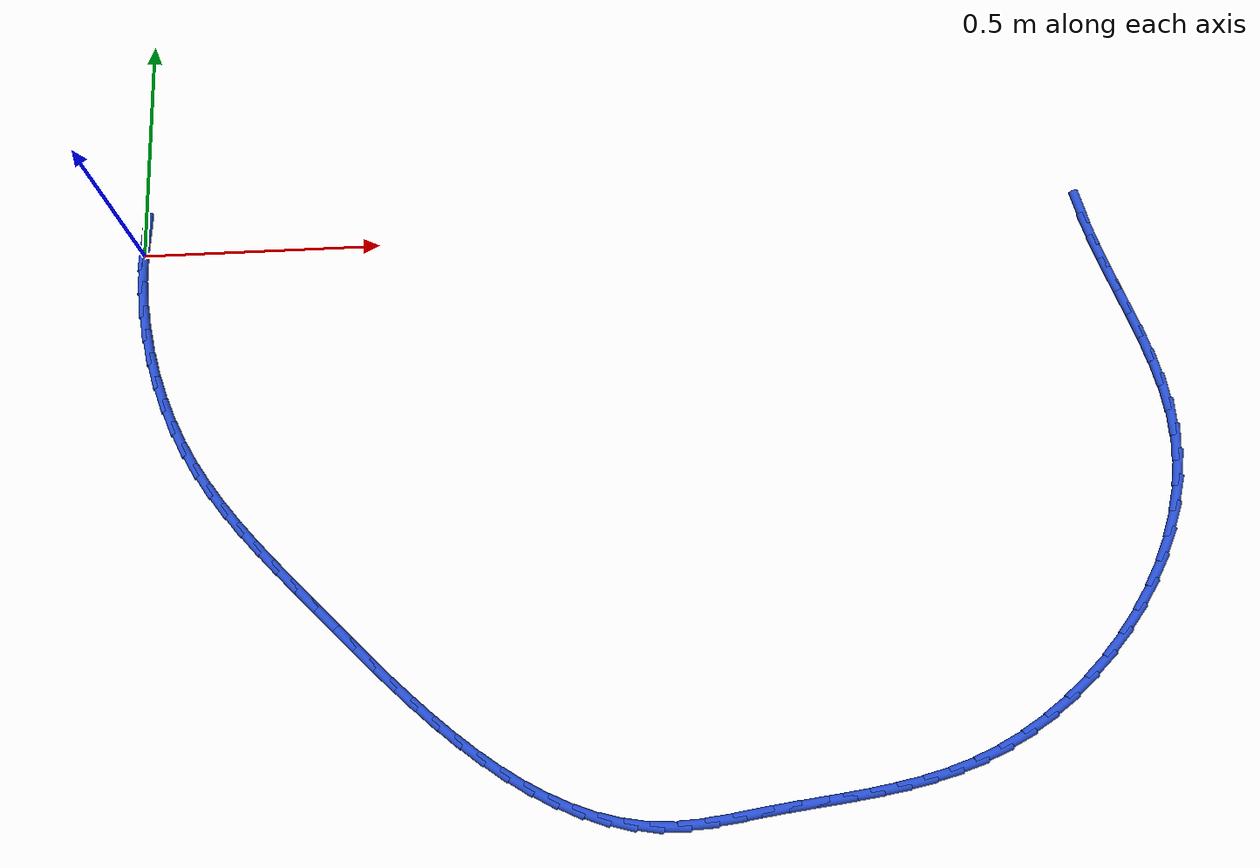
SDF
<sdf version="1.6">
 <world name="default">
  <model name="ground_plane">
   <static>1</static>
   <link name="link">
    <collision name="collision">
     <geometry><plane><normal>0 0 1</normal><size>100 100</size></plane></geometry>
     <surface><friction><ode><mu>100</mu><mu2>50</mu2></ode></friction></surface>
    </collision>
    <visual name="visual">
     <cast_shadows>0</cast_shadows>
     <geometry><plane><normal>0 0 1</normal><size>100 100</size></plane></geometry>
     <material>
      <script><uri>file://media/materials/scripts/gazebo.material</uri><name>Gazebo/WhiteGlow</name></script>
     </material>
    </visual>
   </link>
  </model>
  <model name="line">
   <link name="link_0">
    <pose>2.42861286636753e-17 0.0 0.01 0 1.57 1.5062456968991784</pose>
    <collision name="collision">
     <geometry><cylinder><radius>0.01</radius><length>0.08</length></cylinder></geometry>
    </collision>
    <visual name="visual">
     <material>
      <script><name>Gazebo/Blue</name><uri>file://media/materials/scripts/gazebo.material</uri></script>
     </material>
     <geometry><cylinder><radius>0.01</radius><length>0.08</length></cylinder></geometry>
    </visual>
   </link>
   <link name="link_72">
    <pose>2.0040105107833446 0.015288475493334236 0.01 0 1.57 -1.3416177244611234</pose>
    <collision name="collision">
     <geometry><cylinder><radius>0.01</radius><length>0.08</length></cylinder></geometry>
    </collision>
    <visual name="visual">
     <material>
      <script><name>Gazebo/Blue</name><uri>file://media/materials/scripts/gazebo.material</uri></script>
     </material>
     <geometry><cylinder><radius>0.01</radius><length>0.08</length></cylinder></geometry>
    </visual>
   </link>
   <link name="link_73">
    <pose>2.016112051571794 -0.03658777302632177 0.01 0 1.57 -1.2867563114248148</pose>
    <collision name="collision">
     <geometry><cylinder><radius>0.01</radius><length>0.08</length></cylinder></geometry>
    </collision>
    <visual name="visual">
     <material>
      <script><name>Gazebo/Blue</name><uri>file://media/materials/scripts/gazebo.material</uri></script>
     </material>
     <geometry><cylinder><radius>0.01</radius><length>0.08</length></cylinder></geometry>
    </visual>
   </link>
   <link name="link_74">
    <pose>2.031366813211641 -0.08884200579244145 0.01 0 1.57 -1.252699646388601</pose>
    <collision name="collision">
     <geometry><cylinder><radius>0.01</radius><length>0.08</length></cylinder></geometry>
    </collision>
    <visual name="visual">
     <material>
      <script><name>Gazebo/Blue</name><uri>file://media/materials/scripts/gazebo.material</uri></script>
     </material>
     <geometry><cylinder><radius>0.01</radius><length>0.08</length></cylinder></geometry>
    </visual>
   </link>
   <link name="link_75">
    <pose>2.0486881807415496 -0.1414460267157893 0.01 0 1.57 -1.2378734197632872</pose>
    <collision name="collision">
     <geometry><cylinder><radius>0.01</radius><length>0.08</length></cylinder></geometry>
    </collision>
    <visual name="visual">
     <material>
      <script><name>Gazebo/Blue</name><uri>file://media/materials/scripts/gazebo.material</uri></script>
     </material>
     <geometry><cylinder><radius>0.01</radius><length>0.08</length></cylinder></geometry>
    </visual>
   </link>
   <link name="link_76">
    <pose>2.066989539200182 -0.194371639707129 0.01 0 1.57 -1.2413698996060933</pose>
    <collision name="collision">
     <geometry><cylinder><radius>0.01</radius><length>0.08</length></cylinder></geometry>
    </collision>
    <visual name="visual">
     <material>
      <script><name>Gazebo/Blue</name><uri>file://media/materials/scripts/gazebo.material</uri></script>
     </material>
     <geometry><cylinder><radius>0.01</radius><length>0.08</length></cylinder></geometry>
    </visual>
   </link>
   <link name="link_77">
    <pose>2.085184273626199 -0.24759064867722425 0.01 0 1.57 -1.263018742705472</pose>
    <collision name="collision">
     <geometry><cylinder><radius>0.01</radius><length>0.08</length></cylinder></geometry>
    </collision>
    <visual name="visual">
     <material>
      <script><name>Gazebo/Blue</name><uri>file://media/materials/scripts/gazebo.material</uri></script>
     </material>
     <geometry><cylinder><radius>0.01</radius><length>0.08</length></cylinder></geometry>
    </visual>
   </link>
   <link name="link_78">
    <pose>2.102185769058264 -0.3010748575368397 0.01 0 1.57 -1.3033249106179878</pose>
    <collision name="collision">
     <geometry><cylinder><radius>0.01</radius><length>0.08</length></cylinder></geometry>
    </collision>
    <visual name="visual">
     <material>
      <script><name>Gazebo/Blue</name><uri>file://media/materials/scripts/gazebo.material</uri></script>
     </material>
     <geometry><cylinder><radius>0.01</radius><length>0.08</length></cylinder></geometry>
    </visual>
   </link>
   <link name="link_79">
    <pose>2.116907410535038 -0.3547960701967372 0.01 0 1.57 -1.3632737501175733</pose>
    <collision name="collision">
     <geometry><cylinder><radius>0.01</radius><length>0.08</length></cylinder></geometry>
    </collision>
    <visual name="visual">
     <material>
      <script><name>Gazebo/Blue</name><uri>file://media/materials/scripts/gazebo.material</uri></script>
     </material>
     <geometry><cylinder><radius>0.01</radius><length>0.08</length></cylinder></geometry>
    </visual>
   </link>
   <link name="link_80">
    <pose>2.128262583095183 -0.4087260905676813 0.01 0 1.57 -1.4439263084551768</pose>
    <collision name="collision">
     <geometry><cylinder><radius>0.01</radius><length>0.08</length></cylinder></geometry>
    </collision>
    <visual name="visual">
     <material>
      <script><name>Gazebo/Blue</name><uri>file://media/materials/scripts/gazebo.material</uri></script>
     </material>
     <geometry><cylinder><radius>0.01</radius><length>0.08</length></cylinder></geometry>
    </visual>
   </link>
   <link name="link_81">
    <pose>2.135164671777362 -0.4628367225604355 0.01 0 1.57 -1.5452894200503906</pose>
    <collision name="collision">
     <geometry><cylinder><radius>0.01</radius><length>0.08</length></cylinder></geometry>
    </collision>
    <visual name="visual">
     <material>
      <script><name>Gazebo/Blue</name><uri>file://media/materials/scripts/gazebo.material</uri></script>
     </material>
     <geometry><cylinder><radius>0.01</radius><length>0.08</length></cylinder></geometry>
    </visual>
   </link>
   <link name="link_82">
    <pose>2.1365489396836734 -0.5170952692563825 0.01 0 1.57 1.4870841949405584</pose>
    <collision name="collision">
     <geometry><cylinder><radius>0.01</radius><length>0.08</length></cylinder></geometry>
    </collision>
    <visual name="visual">
     <material>
      <script><name>Gazebo/Blue</name><uri>file://media/materials/scripts/gazebo.material</uri></script>
     </material>
     <geometry><cylinder><radius>0.01</radius><length>0.08</length></cylinder></geometry>
    </visual>
   </link>
   <link name="link_83">
    <pose>2.13199770295842 -0.5713359197913909 0.01 0 1.57 1.384400701026901</pose>
    <collision name="collision">
     <geometry><cylinder><radius>0.01</radius><length>0.08</length></cylinder></geometry>
    </collision>
    <visual name="visual">
     <material>
      <script><name>Gazebo/Blue</name><uri>file://media/materials/scripts/gazebo.material</uri></script>
     </material>
     <geometry><cylinder><radius>0.01</radius><length>0.08</length></cylinder></geometry>
    </visual>
   </link>
   <link name="link_84">
    <pose>2.1218320509750916 -0.6252408803680027 0.01 0 1.57 1.2889178028825368</pose>
    <collision name="collision">
     <geometry><cylinder><radius>0.01</radius><length>0.08</length></cylinder></geometry>
    </collision>
    <visual name="visual">
     <material>
      <script><name>Gazebo/Blue</name><uri>file://media/materials/scripts/gazebo.material</uri></script>
     </material>
     <geometry><cylinder><radius>0.01</radius><length>0.08</length></cylinder></geometry>
    </visual>
   </link>
   <link name="link_85">
    <pose>2.1064133963194 -0.6784840617608336 0.01 0 1.57 1.200092322463749</pose>
    <collision name="collision">
     <geometry><cylinder><radius>0.01</radius><length>0.08</length></cylinder></geometry>
    </collision>
    <visual name="visual">
     <material>
      <script><name>Gazebo/Blue</name><uri>file://media/materials/scripts/gazebo.material</uri></script>
     </material>
     <geometry><cylinder><radius>0.01</radius><length>0.08</length></cylinder></geometry>
    </visual>
   </link>
   <link name="link_86">
    <pose>2.0861031515770594 -0.7307393747445 0.01 0 1.57 1.1170953570794266</pose>
    <collision name="collision">
     <geometry><cylinder><radius>0.01</radius><length>0.08</length></cylinder></geometry>
    </collision>
    <visual name="visual">
     <material>
      <script><name>Gazebo/Blue</name><uri>file://media/materials/scripts/gazebo.material</uri></script>
     </material>
     <geometry><cylinder><radius>0.01</radius><length>0.08</length></cylinder></geometry>
    </visual>
   </link>
   <link name="link_87">
    <pose>2.0612627293337824 -0.7816807300936185 0.01 0 1.57 1.0389454247448633</pose>
    <collision name="collision">
     <geometry><cylinder><radius>0.01</radius><length>0.08</length></cylinder></geometry>
    </collision>
    <visual name="visual">
     <material>
      <script><name>Gazebo/Blue</name><uri>file://media/materials/scripts/gazebo.material</uri></script>
     </material>
     <geometry><cylinder><radius>0.01</radius><length>0.08</length></cylinder></geometry>
    </visual>
   </link>
   <link name="link_88">
    <pose>2.032253542175284 -0.8309820385828038 0.01 0 1.57 0.9645945229496923</pose>
    <collision name="collision">
     <geometry><cylinder><radius>0.01</radius><length>0.08</length></cylinder></geometry>
    </collision>
    <visual name="visual">
     <material>
      <script><name>Gazebo/Blue</name><uri>file://media/materials/scripts/gazebo.material</uri></script>
     </material>
     <geometry><cylinder><radius>0.01</radius><length>0.08</length></cylinder></geometry>
    </visual>
   </link>
   <link name="link_89">
    <pose>1.999437002687277 -0.8783172109866724 0.01 0 1.57 0.8929748739932691</pose>
    <collision name="collision">
     <geometry><cylinder><radius>0.01</radius><length>0.08</length></cylinder></geometry>
    </collision>
    <visual name="visual">
     <material>
      <script><name>Gazebo/Blue</name><uri>file://media/materials/scripts/gazebo.material</uri></script>
     </material>
     <geometry><cylinder><radius>0.01</radius><length>0.08</length></cylinder></geometry>
    </visual>
   </link>
   <link name="link_90">
    <pose>1.9631745234554752 -0.9233601580798406 0.01 0 1.57 0.8230172481504284</pose>
    <collision name="collision">
     <geometry><cylinder><radius>0.01</radius><length>0.08</length></cylinder></geometry>
    </collision>
    <visual name="visual">
     <material>
      <script><name>Gazebo/Blue</name><uri>file://media/materials/scripts/gazebo.material</uri></script>
     </material>
     <geometry><cylinder><radius>0.01</radius><length>0.08</length></cylinder></geometry>
    </visual>
   </link>
   <link name="link_91">
    <pose>1.9238275170655914 -0.9657847906369251 0.01 0 1.57 0.7536506357209586</pose>
    <collision name="collision">
     <geometry><cylinder><radius>0.01</radius><length>0.08</length></cylinder></geometry>
    </collision>
    <visual name="visual">
     <material>
      <script><name>Gazebo/Blue</name><uri>file://media/materials/scripts/gazebo.material</uri></script>
     </material>
     <geometry><cylinder><radius>0.01</radius><length>0.08</length></cylinder></geometry>
    </visual>
   </link>
   <link name="link_92">
    <pose>1.88175739610334 -1.0052650194325408 0.01 0 1.57 0.6837908445344936</pose>
    <collision name="collision">
     <geometry><cylinder><radius>0.01</radius><length>0.08</length></cylinder></geometry>
    </collision>
    <visual name="visual">
     <material>
      <script><name>Gazebo/Blue</name><uri>file://media/materials/scripts/gazebo.material</uri></script>
     </material>
     <geometry><cylinder><radius>0.01</radius><length>0.08</length></cylinder></geometry>
    </visual>
   </link>
   <link name="link_93">
    <pose>1.8373255731544351 -1.0414747552413042 0.01 0 1.57 0.6123238960724106</pose>
    <collision name="collision">
     <geometry><cylinder><radius>0.01</radius><length>0.08</length></cylinder></geometry>
    </collision>
    <visual name="visual">
     <material>
      <script><name>Gazebo/Blue</name><uri>file://media/materials/scripts/gazebo.material</uri></script>
     </material>
     <geometry><cylinder><radius>0.01</radius><length>0.08</length></cylinder></geometry>
    </visual>
   </link>
   <link name="link_94">
    <pose>1.7908934608045892 -1.0740879088378315 0.01 0 1.57 0.5380895559328759</pose>
    <collision name="collision">
     <geometry><cylinder><radius>0.01</radius><length>0.08</length></cylinder></geometry>
    </collision>
    <visual name="visual">
     <material>
      <script><name>Gazebo/Blue</name><uri>file://media/materials/scripts/gazebo.material</uri></script>
     </material>
     <geometry><cylinder><radius>0.01</radius><length>0.08</length></cylinder></geometry>
    </visual>
   </link>
   <link name="link_95">
    <pose>1.7428224716395149 -1.1027783909967388 0.01 0 1.57 0.45987131070319226</pose>
    <collision name="collision">
     <geometry><cylinder><radius>0.01</radius><length>0.08</length></cylinder></geometry>
    </collision>
    <visual name="visual">
     <material>
      <script><name>Gazebo/Blue</name><uri>file://media/materials/scripts/gazebo.material</uri></script>
     </material>
     <geometry><cylinder><radius>0.01</radius><length>0.08</length></cylinder></geometry>
    </visual>
   </link>
   <link name="link_96">
    <pose>1.6934740182449275 -1.1272201124926418 0.01 0 1.57 0.3780984687738225</pose>
    <collision name="collision">
     <geometry><cylinder><radius>0.01</radius><length>0.08</length></cylinder></geometry>
    </collision>
    <visual name="visual">
     <material>
      <script><name>Gazebo/Blue</name><uri>file://media/materials/scripts/gazebo.material</uri></script>
     </material>
     <geometry><cylinder><radius>0.01</radius><length>0.08</length></cylinder></geometry>
    </visual>
   </link>
   <link name="link_97">
    <pose>1.6431813503494275 -1.1471968383952635 0.01 0 1.57 0.3028963763006265</pose>
    <collision name="collision">
     <geometry><cylinder><radius>0.01</radius><length>0.08</length></cylinder></geometry>
    </collision>
    <visual name="visual">
     <material>
      <script><name>Gazebo/Blue</name><uri>file://media/materials/scripts/gazebo.material</uri></script>
     </material>
     <geometry><cylinder><radius>0.01</radius><length>0.08</length></cylinder></geometry>
    </visual>
   </link>
   <link name="link_98">
    <pose>1.592107008581118 -1.1631582153583193 0.01 0 1.57 0.23962322826591073</pose>
    <collision name="collision">
     <geometry><cylinder><radius>0.01</radius><length>0.08</length></cylinder></geometry>
    </collision>
    <visual name="visual">
     <material>
      <script><name>Gazebo/Blue</name><uri>file://media/materials/scripts/gazebo.material</uri></script>
     </material>
     <geometry><cylinder><radius>0.01</radius><length>0.08</length></cylinder></geometry>
    </visual>
   </link>
   <link name="link_99">
    <pose>1.5403495516875432 -1.1758034628810707 0.01 0 1.57 0.18930623276233927</pose>
    <collision name="collision">
     <geometry><cylinder><radius>0.01</radius><length>0.08</length></cylinder></geometry>
    </collision>
    <visual name="visual">
     <material>
      <script><name>Gazebo/Blue</name><uri>file://media/materials/scripts/gazebo.material</uri></script>
     </material>
     <geometry><cylinder><radius>0.01</radius><length>0.08</length></cylinder></geometry>
    </visual>
   </link>
   <link name="link_100">
    <pose>1.4880074255475104 -1.1858322407276072 0.01 0 1.57 0.1523632430268149</pose>
    <collision name="collision">
     <geometry><cylinder><radius>0.01</radius><length>0.08</length></cylinder></geometry>
    </collision>
    <visual name="visual">
     <material>
      <script><name>Gazebo/Blue</name><uri>file://media/materials/scripts/gazebo.material</uri></script>
     </material>
     <geometry><cylinder><radius>0.01</radius><length>0.08</length></cylinder></geometry>
    </visual>
   </link>
   <link name="link_101">
    <pose>1.4351790760398304 -1.19394420866202 0.01 0 1.57 0.12884481246914453</pose>
    <collision name="collision">
     <geometry><cylinder><radius>0.01</radius><length>0.08</length></cylinder></geometry>
    </collision>
    <visual name="visual">
     <material>
      <script><name>Gazebo/Blue</name><uri>file://media/materials/scripts/gazebo.material</uri></script>
     </material>
     <geometry><cylinder><radius>0.01</radius><length>0.08</length></cylinder></geometry>
    </visual>
   </link>
   <link name="link_102">
    <pose>1.3819629490433119 -1.200839026448399 0.01 0 1.57 0.11863056537637429</pose>
    <collision name="collision">
     <geometry><cylinder><radius>0.01</radius><length>0.08</length></cylinder></geometry>
    </collision>
    <visual name="visual">
     <material>
      <script><name>Gazebo/Blue</name><uri>file://media/materials/scripts/gazebo.material</uri></script>
     </material>
     <geometry><cylinder><radius>0.01</radius><length>0.08</length></cylinder></geometry>
    </visual>
   </link>
   <link name="link_103">
    <pose>1.3284574904367619 -1.207216353850834 0.01 0 1.57 0.12155682384455437</pose>
    <collision name="collision">
     <geometry><cylinder><radius>0.01</radius><length>0.08</length></cylinder></geometry>
    </collision>
    <visual name="visual">
     <material>
      <script><name>Gazebo/Blue</name><uri>file://media/materials/scripts/gazebo.material</uri></script>
     </material>
     <geometry><cylinder><radius>0.01</radius><length>0.08</length></cylinder></geometry>
    </visual>
   </link>
   <link name="link_104">
    <pose>1.2747611460989894 -1.2137758506334155 0.01 0 1.57 0.1369938170093388</pose>
    <collision name="collision">
     <geometry><cylinder><radius>0.01</radius><length>0.08</length></cylinder></geometry>
    </collision>
    <visual name="visual">
     <material>
      <script><name>Gazebo/Blue</name><uri>file://media/materials/scripts/gazebo.material</uri></script>
     </material>
     <geometry><cylinder><radius>0.01</radius><length>0.08</length></cylinder></geometry>
    </visual>
   </link>
   <link name="link_105">
    <pose>1.2209746849762713 -1.221190707011463 0.01 0 1.57 0.14374409153349707</pose>
    <collision name="collision">
     <geometry><cylinder><radius>0.01</radius><length>0.08</length></cylinder></geometry>
    </collision>
    <visual name="visual">
     <material>
      <script><name>Gazebo/Blue</name><uri>file://media/materials/scripts/gazebo.material</uri></script>
     </material>
     <geometry><cylinder><radius>0.01</radius><length>0.08</length></cylinder></geometry>
    </visual>
   </link>
   <link name="link_106">
    <pose>1.167301971257591 -1.2289594230142982 0.01 0 1.57 0.11237302761041162</pose>
    <collision name="collision">
     <geometry><cylinder><radius>0.01</radius><length>0.08</length></cylinder></geometry>
    </collision>
    <visual name="visual">
     <material>
      <script><name>Gazebo/Blue</name><uri>file://media/materials/scripts/gazebo.material</uri></script>
     </material>
     <geometry><cylinder><radius>0.01</radius><length>0.08</length></cylinder></geometry>
    </visual>
   </link>
   <link name="link_107">
    <pose>1.1140886990096381 -1.234964457416122 0.01 0 1.57 0.0382726738082082</pose>
    <collision name="collision">
     <geometry><cylinder><radius>0.01</radius><length>0.08</length></cylinder></geometry>
    </collision>
    <visual name="visual">
     <material>
      <script><name>Gazebo/Blue</name><uri>file://media/materials/scripts/gazebo.material</uri></script>
     </material>
     <geometry><cylinder><radius>0.01</radius><length>0.08</length></cylinder></geometry>
    </visual>
   </link>
   <link name="link_108">
    <pose>1.0616908598721115 -1.2369708425667247 0.01 0 1.57 -0.07167542441182356</pose>
    <collision name="collision">
     <geometry><cylinder><radius>0.01</radius><length>0.08</length></cylinder></geometry>
    </collision>
    <visual name="visual">
     <material>
      <script><name>Gazebo/Blue</name><uri>file://media/materials/scripts/gazebo.material</uri></script>
     </material>
     <geometry><cylinder><radius>0.01</radius><length>0.08</length></cylinder></geometry>
    </visual>
   </link>
   <link name="link_109">
    <pose>1.0103844755536808 -1.2332871253323094 0.01 0 1.57 -0.18296580059716036</pose>
    <collision name="collision">
     <geometry><cylinder><radius>0.01</radius><length>0.08</length></cylinder></geometry>
    </collision>
    <visual name="visual">
     <material>
      <script><name>Gazebo/Blue</name><uri>file://media/materials/scripts/gazebo.material</uri></script>
     </material>
     <geometry><cylinder><radius>0.01</radius><length>0.08</length></cylinder></geometry>
    </visual>
   </link>
   <link name="link_110">
    <pose>0.9601841896277209 -1.2239983054155605 0.01 0 1.57 -0.28597133093070265</pose>
    <collision name="collision">
     <geometry><cylinder><radius>0.01</radius><length>0.08</length></cylinder></geometry>
    </collision>
    <visual name="visual">
     <material>
      <script><name>Gazebo/Blue</name><uri>file://media/materials/scripts/gazebo.material</uri></script>
     </material>
     <geometry><cylinder><radius>0.01</radius><length>0.08</length></cylinder></geometry>
    </visual>
   </link>
   <link name="link_111">
    <pose>0.9110513301264971 -1.2095517408477188 0.01 0 1.57 -0.3789877202231385</pose>
    <collision name="collision">
     <geometry><cylinder><radius>0.01</radius><length>0.08</length></cylinder></geometry>
    </collision>
    <visual name="visual">
     <material>
      <script><name>Gazebo/Blue</name><uri>file://media/materials/scripts/gazebo.material</uri></script>
     </material>
     <geometry><cylinder><radius>0.01</radius><length>0.08</length></cylinder></geometry>
    </visual>
   </link>
   <link name="link_112">
    <pose>0.862947225082277 -1.1903947896600233 0.01 0 1.57 -0.46131809682366204</pose>
    <collision name="collision">
     <geometry><cylinder><radius>0.01</radius><length>0.08</length></cylinder></geometry>
    </collision>
    <visual name="visual">
     <material>
      <script><name>Gazebo/Blue</name><uri>file://media/materials/scripts/gazebo.material</uri></script>
     </material>
     <geometry><cylinder><radius>0.01</radius><length>0.08</length></cylinder></geometry>
    </visual>
   </link>
   <link name="link_113">
    <pose>0.8158332025273256 -1.1669748098837154 0.01 0 1.57 -0.5330294378595679</pose>
    <collision name="collision">
     <geometry><cylinder><radius>0.01</radius><length>0.08</length></cylinder></geometry>
    </collision>
    <visual name="visual">
     <material>
      <script><name>Gazebo/Blue</name><uri>file://media/materials/scripts/gazebo.material</uri></script>
     </material>
     <geometry><cylinder><radius>0.01</radius><length>0.08</length></cylinder></geometry>
    </visual>
   </link>
   <link name="link_114">
    <pose>0.7696705904939116 -1.1397391595500348 0.01 0 1.57 -0.5946645580351585</pose>
    <collision name="collision">
     <geometry><cylinder><radius>0.01</radius><length>0.08</length></cylinder></geometry>
    </collision>
    <visual name="visual">
     <material>
      <script><name>Gazebo/Blue</name><uri>file://media/materials/scripts/gazebo.material</uri></script>
     </material>
     <geometry><cylinder><radius>0.01</radius><length>0.08</length></cylinder></geometry>
    </visual>
   </link>
   <link name="link_115">
    <pose>0.7244207170143009 -1.1091351966902219 0.01 0 1.57 -0.6469974114412842</pose>
    <collision name="collision">
     <geometry><cylinder><radius>0.01</radius><length>0.08</length></cylinder></geometry>
    </collision>
    <visual name="visual">
     <material>
      <script><name>Gazebo/Blue</name><uri>file://media/materials/scripts/gazebo.material</uri></script>
     </material>
     <geometry><cylinder><radius>0.01</radius><length>0.08</length></cylinder></geometry>
    </visual>
   </link>
   <link name="link_116">
    <pose>0.68004491012076 -1.0756102793355173 0.01 0 1.57 -0.6908605925939382</pose>
    <collision name="collision">
     <geometry><cylinder><radius>0.01</radius><length>0.08</length></cylinder></geometry>
    </collision>
    <visual name="visual">
     <material>
      <script><name>Gazebo/Blue</name><uri>file://media/materials/scripts/gazebo.material</uri></script>
     </material>
     <geometry><cylinder><radius>0.01</radius><length>0.08</length></cylinder></geometry>
    </visual>
   </link>
   <link name="link_117">
    <pose>0.6365044978455549 -1.039611765517161 0.01 0 1.57 -0.7270389972742293</pose>
    <collision name="collision">
     <geometry><cylinder><radius>0.01</radius><length>0.08</length></cylinder></geometry>
    </collision>
    <visual name="visual">
     <material>
      <script><name>Gazebo/Blue</name><uri>file://media/materials/scripts/gazebo.material</uri></script>
     </material>
     <geometry><cylinder><radius>0.01</radius><length>0.08</length></cylinder></geometry>
    </visual>
   </link>
   <link name="link_118">
    <pose>0.5937608082209536 -1.0015870132663935 0.01 0 1.57 -0.7562113620105381</pose>
    <collision name="collision">
     <geometry><cylinder><radius>0.01</radius><length>0.08</length></cylinder></geometry>
    </collision>
    <visual name="visual">
     <material>
      <script><name>Gazebo/Blue</name><uri>file://media/materials/scripts/gazebo.material</uri></script>
     </material>
     <geometry><cylinder><radius>0.01</radius><length>0.08</length></cylinder></geometry>
    </visual>
   </link>
   <link name="link_119">
    <pose>0.5517751692792221 -0.9619833806144551 0.01 0 1.57 -0.7789214730023607</pose>
    <collision name="collision">
     <geometry><cylinder><radius>0.01</radius><length>0.08</length></cylinder></geometry>
    </collision>
    <visual name="visual">
     <material>
      <script><name>Gazebo/Blue</name><uri>file://media/materials/scripts/gazebo.material</uri></script>
     </material>
     <geometry><cylinder><radius>0.01</radius><length>0.08</length></cylinder></geometry>
    </visual>
   </link>
   <link name="link_120">
    <pose>0.5105089090526269 -0.9212482255925858 0.01 0 1.57 -0.7955650854903894</pose>
    <collision name="collision">
     <geometry><cylinder><radius>0.01</radius><length>0.08</length></cylinder></geometry>
    </collision>
    <visual name="visual">
     <material>
      <script><name>Gazebo/Blue</name><uri>file://media/materials/scripts/gazebo.material</uri></script>
     </material>
     <geometry><cylinder><radius>0.01</radius><length>0.08</length></cylinder></geometry>
    </visual>
   </link>
   <link name="link_121">
    <pose>0.46992335557343484 -0.8798289062320264 0.01 0 1.57 -0.8063830045016142</pose>
    <collision name="collision">
     <geometry><cylinder><radius>0.01</radius><length>0.08</length></cylinder></geometry>
    </collision>
    <visual name="visual">
     <material>
      <script><name>Gazebo/Blue</name><uri>file://media/materials/scripts/gazebo.material</uri></script>
     </material>
     <geometry><cylinder><radius>0.01</radius><length>0.08</length></cylinder></geometry>
    </visual>
   </link>
   <link name="link_122">
    <pose>0.429979836873912 -0.8381727805640156 0.01 0 1.57 -0.8114540222463212</pose>
    <collision name="collision">
     <geometry><cylinder><radius>0.01</radius><length>0.08</length></cylinder></geometry>
    </collision>
    <visual name="visual">
     <material>
      <script><name>Gazebo/Blue</name><uri>file://media/materials/scripts/gazebo.material</uri></script>
     </material>
     <geometry><cylinder><radius>0.01</radius><length>0.08</length></cylinder></geometry>
    </visual>
   </link>
   <link name="link_123">
    <pose>0.3906396809863262 -0.7967272066197962 0.01 0 1.57 -0.8112926866322685</pose>
    <collision name="collision">
     <geometry><cylinder><radius>0.01</radius><length>0.08</length></cylinder></geometry>
    </collision>
    <visual name="visual">
     <material>
      <script><name>Gazebo/Blue</name><uri>file://media/materials/scripts/gazebo.material</uri></script>
     </material>
     <geometry><cylinder><radius>0.01</radius><length>0.08</length></cylinder></geometry>
    </visual>
   </link>
   <link name="link_124">
    <pose>0.35187785850545444 -0.7559041098651493 0.01 0 1.57 -0.8137018925244448</pose>
    <collision name="collision">
     <geometry><cylinder><radius>0.01</radius><length>0.08</length></cylinder></geometry>
    </collision>
    <visual name="visual">
     <material>
      <script><name>Gazebo/Blue</name><uri>file://media/materials/scripts/gazebo.material</uri></script>
     </material>
     <geometry><cylinder><radius>0.01</radius><length>0.08</length></cylinder></geometry>
    </visual>
   </link>
   <link name="link_125">
    <pose>0.31384614973611685 -0.7156562042636585 0.01 0 1.57 -0.8244864006838883</pose>
    <collision name="collision">
     <geometry><cylinder><radius>0.01</radius><length>0.08</length></cylinder></geometry>
    </collision>
    <visual name="visual">
     <material>
      <script><name>Gazebo/Blue</name><uri>file://media/materials/scripts/gazebo.material</uri></script>
     </material>
     <geometry><cylinder><radius>0.01</radius><length>0.08</length></cylinder></geometry>
    </visual>
   </link>
   <link name="link_126">
    <pose>0.2768196964240402 -0.6756158085213199 0.01 0 1.57 -0.8440999236112905</pose>
    <collision name="collision">
     <geometry><cylinder><radius>0.01</radius><length>0.08</length></cylinder></geometry>
    </collision>
    <visual name="visual">
     <material>
      <script><name>Gazebo/Blue</name><uri>file://media/materials/scripts/gazebo.material</uri></script>
     </material>
     <geometry><cylinder><radius>0.01</radius><length>0.08</length></cylinder></geometry>
    </visual>
   </link>
   <link name="link_127">
    <pose>0.24107615714178257 -0.6354087046226529 0.01 0 1.57 -0.8727897909857042</pose>
    <collision name="collision">
     <geometry><cylinder><radius>0.01</radius><length>0.08</length></cylinder></geometry>
    </collision>
    <visual name="visual">
     <material>
      <script><name>Gazebo/Blue</name><uri>file://media/materials/scripts/gazebo.material</uri></script>
     </material>
     <geometry><cylinder><radius>0.01</radius><length>0.08</length></cylinder></geometry>
    </visual>
   </link>
   <link name="link_128">
    <pose>0.20689319046190058 -0.5946606745521757 0.01 0 1.57 -0.9106504251871331</pose>
    <collision name="collision">
     <geometry><cylinder><radius>0.01</radius><length>0.08</length></cylinder></geometry>
    </collision>
    <visual name="visual">
     <material>
      <script><name>Gazebo/Blue</name><uri>file://media/materials/scripts/gazebo.material</uri></script>
     </material>
     <geometry><cylinder><radius>0.01</radius><length>0.08</length></cylinder></geometry>
    </visual>
   </link>
   <link name="link_129">
    <pose>0.1745484549569511 -0.5529975002944071 0.01 0 1.57 -0.9575424729573062</pose>
    <collision name="collision">
     <geometry><cylinder><radius>0.01</radius><length>0.08</length></cylinder></geometry>
    </collision>
    <visual name="visual">
     <material>
      <script><name>Gazebo/Blue</name><uri>file://media/materials/scripts/gazebo.material</uri></script>
     </material>
     <geometry><cylinder><radius>0.01</radius><length>0.08</length></cylinder></geometry>
    </visual>
   </link>
   <link name="link_130">
    <pose>0.1443196091994912 -0.5100449638338653 0.01 0 1.57 -1.01299967111319</pose>
    <collision name="collision">
     <geometry><cylinder><radius>0.01</radius><length>0.08</length></cylinder></geometry>
    </collision>
    <visual name="visual">
     <material>
      <script><name>Gazebo/Blue</name><uri>file://media/materials/scripts/gazebo.material</uri></script>
     </material>
     <geometry><cylinder><radius>0.01</radius><length>0.08</length></cylinder></geometry>
    </visual>
   </link>
   <link name="link_131">
    <pose>0.11648431176207742 -0.4654288471550686 0.01 0 1.57 -1.0760900576935304</pose>
    <collision name="collision">
     <geometry><cylinder><radius>0.01</radius><length>0.08</length></cylinder></geometry>
    </collision>
    <visual name="visual">
     <material>
      <script><name>Gazebo/Blue</name><uri>file://media/materials/scripts/gazebo.material</uri></script>
     </material>
     <geometry><cylinder><radius>0.01</radius><length>0.08</length></cylinder></geometry>
    </visual>
   </link>
   <link name="link_132">
    <pose>0.09131912606727842 -0.41877901859516 0.01 0 1.57 -1.1421512083104937</pose>
    <collision name="collision">
     <geometry><cylinder><radius>0.01</radius><length>0.08</length></cylinder></geometry>
    </collision>
    <visual name="visual">
     <material>
      <script><name>Gazebo/Blue</name><uri>file://media/materials/scripts/gazebo.material</uri></script>
     </material>
     <geometry><cylinder><radius>0.01</radius><length>0.08</length></cylinder></geometry>
    </visual>
   </link>
   <link name="link_133">
    <pose>0.06902736860906884 -0.3699986540580192 0.01 0 1.57 -1.2056184505519514</pose>
    <collision name="collision">
     <geometry><cylinder><radius>0.01</radius><length>0.08</length></cylinder></geometry>
    </collision>
    <visual name="visual">
     <material>
      <script><name>Gazebo/Blue</name><uri>file://media/materials/scripts/gazebo.material</uri></script>
     </material>
     <geometry><cylinder><radius>0.01</radius><length>0.08</length></cylinder></geometry>
    </visual>
   </link>
   <link name="link_134">
    <pose>0.04969426265995088 -0.3194315727841061 0.01 0 1.57 -1.2668720411342334</pose>
    <collision name="collision">
     <geometry><cylinder><radius>0.01</radius><length>0.08</length></cylinder></geometry>
    </collision>
    <visual name="visual">
     <material>
      <script><name>Gazebo/Blue</name><uri>file://media/materials/scripts/gazebo.material</uri></script>
     </material>
     <geometry><cylinder><radius>0.01</radius><length>0.08</length></cylinder></geometry>
    </visual>
   </link>
   <link name="link_135">
    <pose>0.033394320565349876 -0.26746155988648396 0.01 0 1.57 -1.3267952201032445</pose>
    <collision name="collision">
     <geometry><cylinder><radius>0.01</radius><length>0.08</length></cylinder></geometry>
    </collision>
    <visual name="visual">
     <material>
      <script><name>Gazebo/Blue</name><uri>file://media/materials/scripts/gazebo.material</uri></script>
     </material>
     <geometry><cylinder><radius>0.01</radius><length>0.08</length></cylinder></geometry>
    </visual>
   </link>
   <link name="link_136">
    <pose>0.02020205467069192 -0.2144724004782186 0.01 0 1.57 -1.386250523843934</pose>
    <collision name="collision">
     <geometry><cylinder><radius>0.01</radius><length>0.08</length></cylinder></geometry>
    </collision>
    <visual name="visual">
     <material>
      <script><name>Gazebo/Blue</name><uri>file://media/materials/scripts/gazebo.material</uri></script>
     </material>
     <geometry><cylinder><radius>0.01</radius><length>0.08</length></cylinder></geometry>
    </visual>
   </link>
   <link name="link_137">
    <pose>0.010191977321402357 -0.16084787967237343 0.01 0 1.57 -1.4460965912271755</pose>
    <collision name="collision">
     <geometry><cylinder><radius>0.01</radius><length>0.08</length></cylinder></geometry>
    </collision>
    <visual name="visual">
     <material>
      <script><name>Gazebo/Blue</name><uri>file://media/materials/scripts/gazebo.material</uri></script>
     </material>
     <geometry><cylinder><radius>0.01</radius><length>0.08</length></cylinder></geometry>
    </visual>
   </link>
   <link name="link_138">
    <pose>0.0034386008629067833 -0.10697178258201263 0.01 0 1.57 -1.5072067832234504</pose>
    <collision name="collision">
     <geometry><cylinder><radius>0.01</radius><length>0.08</length></cylinder></geometry>
    </collision>
    <visual name="visual">
     <material>
      <script><name>Gazebo/Blue</name><uri>file://media/materials/scripts/gazebo.material</uri></script>
     </material>
     <geometry><cylinder><radius>0.01</radius><length>0.08</length></cylinder></geometry>
    </visual>
   </link>
   <link name="link_139">
    <pose>1.643764063079256e-05 -0.05322789432020029 0.01 0 1.57 -1.5704875105188036</pose>
    <collision name="collision">
     <geometry><cylinder><radius>0.01</radius><length>0.08</length></cylinder></geometry>
    </collision>
    <visual name="visual">
     <material>
      <script><name>Gazebo/Blue</name><uri>file://media/materials/scripts/gazebo.material</uri></script>
     </material>
     <geometry><cylinder><radius>0.01</radius><length>0.08</length></cylinder></geometry>
    </visual>
   </link>
   <link name="link_140">
    <pose>1.734723475976807e-17 2.220446049250313e-16 0.01 0 1.57 1.5046988856893075</pose>
    <collision name="collision">
     <geometry><cylinder><radius>0.01</radius><length>0.08</length></cylinder></geometry>
    </collision>
    <visual name="visual">
     <material>
      <script><name>Gazebo/Blue</name><uri>file://media/materials/scripts/gazebo.material</uri></script>
     </material>
     <geometry><cylinder><radius>0.01</radius><length>0.08</length></cylinder></geometry>
    </visual>
   </link>
   <link name="link_141">
    <pose>0.0034638002864400587 0.052328115265523056 0.01 0 1.57 1.5046988856893078</pose>
    <collision name="collision">
     <geometry><cylinder><radius>0.01</radius><length>0.08</length></cylinder></geometry>
    </collision>
    <visual name="visual">
     <material>
      <script><name>Gazebo/Blue</name><uri>file://media/materials/scripts/gazebo.material</uri></script>
     </material>
     <geometry><cylinder><radius>0.01</radius><length>0.08</length></cylinder></geometry>
    </visual>
   </link>
  </model>
 </world>
</sdf>
